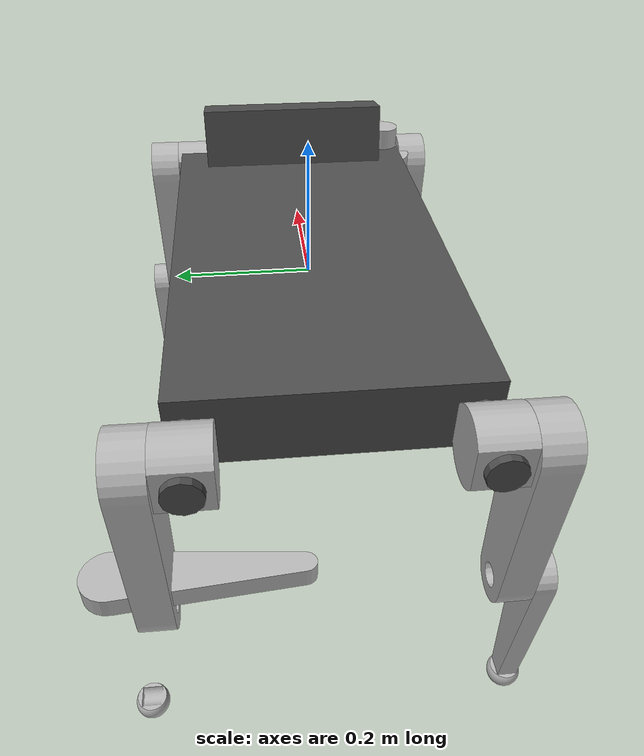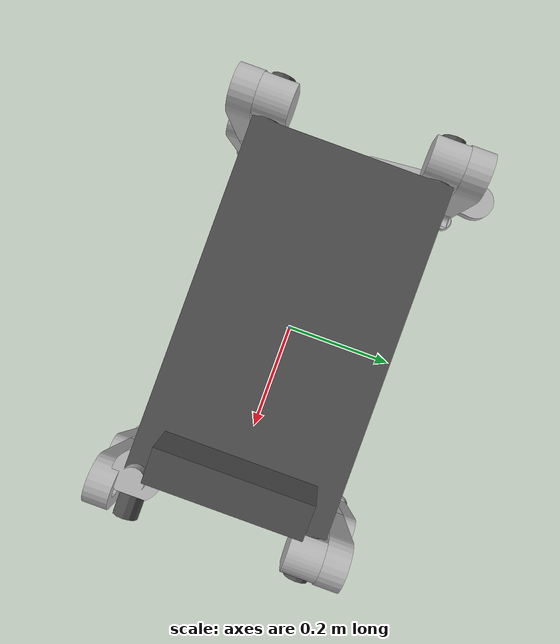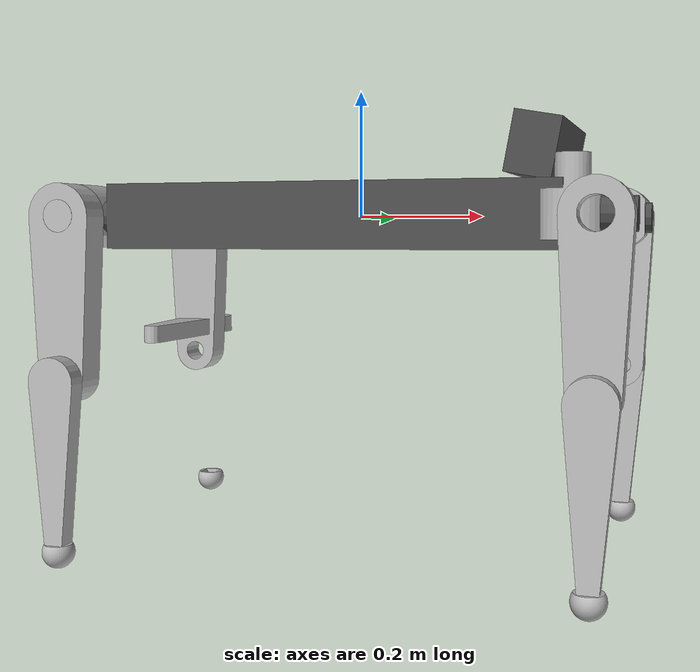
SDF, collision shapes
<sdf version='1.6'>
  <model name='simpledog'>
    <link name='base_link'>
      <pose frame=''>0 0 0 0 -0 0</pose>
      <inertial>
        <pose frame=''>0 -0 0 0 -0 0</pose>
        <mass>15.238</mass>
        <inertia>
          <ixx>0.74932</ixx>
          <ixy>-1.2062e-17</ixy>
          <ixz>-2.0602e-16</ixz>
          <iyy>2.3017</iyy>
          <iyz>-3.8366e-17</iyz>
          <izz>2.9675</izz>
        </inertia>
      </inertial>
      <collision name='base_link_collision'>
        <pose frame=''>0 0 0 0 -0 0</pose>
        <geometry>
          <mesh>
            <scale>1 1 1</scale>
            <uri>model://simpledog/meshes/base_link.STL</uri>
          </mesh>
        </geometry>
        <surface>
          <contact>
            <ode>
              <kp>1e+07</kp>
              <kd>1</kd>
            </ode>
          </contact>
          <friction>
            <ode>
              <mu>10</mu>
              <mu2>10</mu2>
              <fdir1>1 0 0</fdir1>
            </ode>
          </friction>
        </surface>
      </collision>
      <collision name='base_link_fixed_joint_lump__camera_link_collision_1'>
        <pose frame=''>0.3 0 0.1 0 0.18 0</pose>
        <geometry>
          <box>
            <size>0.07 0.3 0.09</size>
          </box>
        </geometry>
        <surface>
          <contact>
            <ode/>
          </contact>
          <friction>
            <ode/>
          </friction>
        </surface>
      </collision>
      <visual name='base_link_visual'>
        <pose frame=''>0 0 0 0 -0 0</pose>
        <geometry>
          <mesh>
            <scale>1 1 1</scale>
            <uri>model://simpledog/meshes/base_link.STL</uri>
          </mesh>
        </geometry>
        <material>
          <script>
            <name>Gazebo/DarkGrey</name>
            <uri>file://media/materials/scripts/gazebo.material</uri>
          </script>
        </material>
      </visual>
      <visual name='base_link_fixed_joint_lump__camera_link_visual_1'>
        <pose frame=''>0.3 0 0.1 0.18 -1e-06 1.5708</pose>
        <geometry>
          <mesh>
            <scale>1 1 1</scale>
            <uri>model://simpledog/meshes/kinect.dae</uri>
          </mesh>
        </geometry>
        <material>
          <script>
            <uri>__default__</uri>
            <name>__default__</name>
          </script>
        </material>
      </visual>
      <velocity_decay/>
      <gravity>1</gravity>
      <gravity>1</gravity>
      <velocity_decay/>
      <self_collide>0</self_collide>
      <sensor name='camera' type='depth'>
        <always_on>1</always_on>
        <update_rate>10</update_rate>
        <camera name='__default__'>
          <horizontal_fov>1.04667</horizontal_fov>
          <image>
            <format>R8G8B8</format>
            <width>640</width>
            <height>480</height>
          </image>
          <clip>
            <near>0.05</near>
            <far>8</far>
          </clip>
        </camera>
        <plugin name='kinect_camera_controller' filename='libgazebo_ros_openni_kinect.so'>
          <cameraName>camera</cameraName>
          <alwaysOn>true</alwaysOn>
          <updateRate>10.0</updateRate>
          <imageTopicName>rgb/image_raw</imageTopicName>
          <depthImageTopicName>depth/image_raw</depthImageTopicName>
          <pointCloudTopicName>depth/points</pointCloudTopicName>
          <cameraInfoTopicName>rgb/camera_info</cameraInfoTopicName>
          <depthImageCameraInfoTopicName>depth/camera_info</depthImageCameraInfoTopicName>
          <frameName>camera_frame_optical</frameName>
          <baseline>0.1</baseline>
          <distortion_k1>0.0</distortion_k1>
          <distortion_k2>0.0</distortion_k2>
          <distortion_k3>0.0</distortion_k3>
          <distortion_t1>0.0</distortion_t1>
          <distortion_t2>0.0</distortion_t2>
          <pointCloudCutoff>0.4</pointCloudCutoff>
          <robotNamespace>/simpledog</robotNamespace>
        </plugin>
        <pose frame=''>0.3 0 0.1 0 0.18 0</pose>
      </sensor>
    </link>
    <link name='front_left_1_Link'>
      <pose frame=''>0.4 0.175 0 1.5708 1.57052 1.5708</pose>
      <inertial>
        <pose frame=''>0 0.012793 -0.000236 0 -0 0</pose>
        <mass>1.1709</mass>
        <inertia>
          <ixx>0.001719</ixx>
          <ixy>2.9302e-20</ixy>
          <ixz>-1.6433e-19</ixz>
          <iyy>0.0013167</iyy>
          <iyz>-7.6795e-20</iyz>
          <izz>0.0021511</izz>
        </inertia>
      </inertial>
      <collision name='front_left_1_Link_collision'>
        <pose frame=''>0 0 0 0 -0 0</pose>
        <geometry>
          <mesh>
            <scale>1 1 1</scale>
            <uri>model://simpledog/meshes/front_left_1_Link.STL</uri>
          </mesh>
        </geometry>
        <surface>
          <contact>
            <ode>
              <kp>1e+07</kp>
              <kd>1</kd>
            </ode>
          </contact>
          <friction>
            <ode>
              <mu>100</mu>
              <mu2>100</mu2>
              <fdir1>1 0 0</fdir1>
            </ode>
          </friction>
        </surface>
      </collision>
      <visual name='front_left_1_Link_visual'>
        <pose frame=''>0 0 0 0 -0 0</pose>
        <geometry>
          <mesh>
            <scale>1 1 1</scale>
            <uri>model://simpledog/meshes/front_left_1_Link.STL</uri>
          </mesh>
        </geometry>
        <material>
          <script>
            <uri>__default__</uri>
            <name>__default__</name>
          </script>
        </material>
      </visual>
      <gravity>1</gravity>
      <velocity_decay/>
      <self_collide>0</self_collide>
    </link>
    <joint name='front_left_1_joint' type='revolute'>
      <child>front_left_1_Link</child>
      <parent>base_link</parent>
      <axis>
        <xyz>1 0 0</xyz>
        <limit>
          <lower>-3</lower>
          <upper>3</upper>
          <effort>300</effort>
          <velocity>10</velocity>
        </limit>
        <dynamics>
          <spring_reference>0</spring_reference>
          <spring_stiffness>0</spring_stiffness>
        </dynamics>
        <use_parent_model_frame>1</use_parent_model_frame>
      </axis>
      <physics>
        <provide_feedback>1</provide_feedback>
        <ode>
          <provide_feedback>1</provide_feedback>
          <limit>
            <cfm>0</cfm>
            <erp>0.2</erp>
          </limit>
        </ode>
      </physics>
    </joint>
    <link name='front_left_2_Link'>
      <pose frame=''>0.4 0.175 0 -4e-06 1.57052 1.5708</pose>
      <inertial>
        <pose frame=''>0.11439 0.000282 0.05942 0 -0 0</pose>
        <mass>1.3902</mass>
        <inertia>
          <ixx>0.0030209</ixx>
          <ixy>-5.6504e-20</ixy>
          <ixz>2.8413e-18</ixz>
          <iyy>0.026875</iyy>
          <iyz>1.5349e-06</iyz>
          <izz>0.028484</izz>
        </inertia>
      </inertial>
      <collision name='front_left_2_Link_collision'>
        <pose frame=''>0 0 0 0 -0 0</pose>
        <geometry>
          <mesh>
            <scale>1 1 1</scale>
            <uri>model://simpledog/meshes/front_left_2_Link.STL</uri>
          </mesh>
        </geometry>
        <surface>
          <contact>
            <ode>
              <kp>1e+07</kp>
              <kd>1</kd>
            </ode>
          </contact>
          <friction>
            <ode>
              <mu>100</mu>
              <mu2>100</mu2>
              <fdir1>1 0 0</fdir1>
            </ode>
          </friction>
        </surface>
      </collision>
      <visual name='front_left_2_Link_visual'>
        <pose frame=''>0 0 0 0 -0 0</pose>
        <geometry>
          <mesh>
            <scale>1 1 1</scale>
            <uri>model://simpledog/meshes/front_left_2_Link.STL</uri>
          </mesh>
        </geometry>
        <material>
          <script>
            <uri>__default__</uri>
            <name>__default__</name>
          </script>
        </material>
      </visual>
      <gravity>1</gravity>
      <velocity_decay/>
      <self_collide>0</self_collide>
    </link>
    <joint name='front_left_2_joint' type='revolute'>
      <child>front_left_2_Link</child>
      <parent>front_left_1_Link</parent>
      <axis>
        <xyz>-4e-06 1 0.00028</xyz>
        <limit>
          <lower>-3</lower>
          <upper>3</upper>
          <effort>300</effort>
          <velocity>10</velocity>
        </limit>
        <dynamics>
          <spring_reference>0</spring_reference>
          <spring_stiffness>0</spring_stiffness>
        </dynamics>
        <use_parent_model_frame>1</use_parent_model_frame>
      </axis>
      <physics>
        <provide_feedback>1</provide_feedback>
        <ode>
          <provide_feedback>1</provide_feedback>
          <limit>
            <cfm>0</cfm>
            <erp>0.2</erp>
          </limit>
        </ode>
      </physics>
    </joint>
    <link name='front_left_3_Link'>
      <pose frame=''>0.399665 0.28949 -0.250037 -4e-06 1.57052 1.5708</pose>
      <inertial>
        <pose frame=''>0.094936 1.5e-05 -0.016638 0 -0 0</pose>
        <mass>1.40792</mass>
        <inertia>
          <ixx>0.000547037</ixx>
          <ixy>-7.05879e-07</ixy>
          <ixz>-0.000224443</ixz>
          <iyy>0.0108863</iyy>
          <iyz>-8.23294e-08</iyz>
          <izz>0.0110815</izz>
        </inertia>
      </inertial>
      <collision name='front_left_3_Link_collision'>
        <pose frame=''>0 0 0 0 -0 0</pose>
        <geometry>
          <mesh>
            <scale>1 1 1</scale>
            <uri>model://simpledog/meshes/front_left_3_Link.STL</uri>
          </mesh>
        </geometry>
        <surface>
          <contact>
            <ode>
              <kp>1e+07</kp>
              <kd>1</kd>
            </ode>
          </contact>
          <friction>
            <ode>
              <mu>100</mu>
              <mu2>100</mu2>
              <fdir1>1 0 0</fdir1>
            </ode>
          </friction>
        </surface>
      </collision>
      <collision name='front_left_3_Link_fixed_joint_lump__lf_foot_Link_collision_1'>
        <pose frame=''>0.250004 0 -0.01494 0 -0 0</pose>
        <geometry>
          <mesh>
            <scale>1 1 1</scale>
            <uri>model://simpledog/meshes/lf_foot_Link.STL</uri>
          </mesh>
        </geometry>
        <surface>
          <contact>
            <ode>
              <kp>1e+07</kp>
              <kd>1</kd>
            </ode>
          </contact>
          <friction>
            <ode>
              <mu>100</mu>
              <mu2>100</mu2>
              <fdir1>1 0 0</fdir1>
            </ode>
          </friction>
        </surface>
      </collision>
      <visual name='front_left_3_Link_visual'>
        <pose frame=''>0 0 0 0 -0 0</pose>
        <geometry>
          <mesh>
            <scale>1 1 1</scale>
            <uri>model://simpledog/meshes/front_left_3_Link.STL</uri>
          </mesh>
        </geometry>
        <material>
          <script>
            <uri>__default__</uri>
            <name>__default__</name>
          </script>
        </material>
      </visual>
      <visual name='front_left_3_Link_fixed_joint_lump__lf_foot_Link_visual_1'>
        <pose frame=''>0.250004 0 -0.01494 0 -0 0</pose>
        <geometry>
          <mesh>
            <scale>1 1 1</scale>
            <uri>model://simpledog/meshes/lf_foot_Link.STL</uri>
          </mesh>
        </geometry>
        <material>
          <script>
            <name>Gazebo/DarkGrey</name>
            <uri>file://media/materials/scripts/gazebo.material</uri>
          </script>
        </material>
      </visual>
      <velocity_decay/>
      <velocity_decay/>
      <gravity>0</gravity>
      <velocity_decay/>
      <self_collide>0</self_collide>
      <sensor name='lf_foot_contact_sensor' type='contact'>
        <update_rate>100</update_rate>
        <contact>
          <collision>front_left_3_Link_fixed_joint_lump__lf_foot_Link_collision_1</collision>
          <topic>__default_topic__</topic>
        </contact>
        <plugin name='lf_foot_gazebo_ros_bumper_controller' filename='libgazebo_ros_bumper.so'>
          <alwaysOn>true</alwaysOn>
          <frameName>lf_foot_Link</frameName>
          <updateRate>100.0</updateRate>
          <bumperTopicName>lf_foot_bumper</bumperTopicName>
        </plugin>
        <pose frame=''>0.250004 0 -0.01494 0 -0 0</pose>
      </sensor>
    </link>
    <joint name='front_left_3_joint' type='revolute'>
      <child>front_left_3_Link</child>
      <parent>front_left_2_Link</parent>
      <axis>
        <xyz>-4e-06 1 0.00028</xyz>
        <limit>
          <lower>-3</lower>
          <upper>3</upper>
          <effort>300</effort>
          <velocity>10</velocity>
        </limit>
        <dynamics>
          <spring_reference>0</spring_reference>
          <spring_stiffness>0</spring_stiffness>
        </dynamics>
        <use_parent_model_frame>1</use_parent_model_frame>
      </axis>
      <physics>
        <provide_feedback>1</provide_feedback>
        <ode>
          <provide_feedback>1</provide_feedback>
          <limit>
            <cfm>0</cfm>
            <erp>0.2</erp>
          </limit>
        </ode>
      </physics>
    </joint>
    <link name='front_right_1_Link'>
      <pose frame=''>0.4 -0.175 0 -1.57079 1.57079 1.57079</pose>
      <inertial>
        <pose frame=''>0 0.012793 0 0 -0 0</pose>
        <mass>1.1709</mass>
        <inertia>
          <ixx>0.001719</ixx>
          <ixy>-5.88e-19</ixy>
          <ixz>-1.7779e-19</ixz>
          <iyy>0.0013167</iyy>
          <iyz>-2.0543e-19</iyz>
          <izz>0.0021511</izz>
        </inertia>
      </inertial>
      <collision name='front_right_1_Link_collision'>
        <pose frame=''>0 0 0 0 -0 0</pose>
        <geometry>
          <mesh>
            <scale>1 1 1</scale>
            <uri>model://simpledog/meshes/front_right_1_Link.STL</uri>
          </mesh>
        </geometry>
        <surface>
          <contact>
            <ode>
              <kp>1e+07</kp>
              <kd>1</kd>
            </ode>
          </contact>
          <friction>
            <ode>
              <mu>100</mu>
              <mu2>100</mu2>
              <fdir1>1 0 0</fdir1>
            </ode>
          </friction>
        </surface>
      </collision>
      <visual name='front_right_1_Link_visual'>
        <pose frame=''>0 0 0 0 -0 0</pose>
        <geometry>
          <mesh>
            <scale>1 1 1</scale>
            <uri>model://simpledog/meshes/front_right_1_Link.STL</uri>
          </mesh>
        </geometry>
        <material>
          <script>
            <uri>__default__</uri>
            <name>__default__</name>
          </script>
        </material>
      </visual>
      <gravity>1</gravity>
      <velocity_decay/>
      <self_collide>0</self_collide>
    </link>
    <joint name='front_right_1_joint' type='revolute'>
      <child>front_right_1_Link</child>
      <parent>base_link</parent>
      <axis>
        <xyz>-1 7e-06 0</xyz>
        <limit>
          <lower>-3</lower>
          <upper>3</upper>
          <effort>300</effort>
          <velocity>10</velocity>
        </limit>
        <dynamics>
          <spring_reference>0</spring_reference>
          <spring_stiffness>0</spring_stiffness>
        </dynamics>
        <use_parent_model_frame>1</use_parent_model_frame>
      </axis>
      <physics>
        <provide_feedback>1</provide_feedback>
        <ode>
          <provide_feedback>1</provide_feedback>
          <limit>
            <cfm>0</cfm>
            <erp>0.2</erp>
          </limit>
        </ode>
      </physics>
    </joint>
    <link name='front_right_2_Link'>
      <pose frame=''>0.4 -0.175 0 3.14159 1.57079 1.57079</pose>
      <inertial>
        <pose frame=''>0.11432 -0 0.05942 0 -0 0</pose>
        <mass>1.3902</mass>
        <inertia>
          <ixx>0.0030209</ixx>
          <ixy>-4.0905e-18</ixy>
          <ixz>-8.1586e-10</ixz>
          <iyy>0.026875</iyy>
          <iyz>2.3399e-19</iyz>
          <izz>0.028484</izz>
        </inertia>
      </inertial>
      <collision name='front_right_2_Link_collision'>
        <pose frame=''>0 0 0 0 -0 0</pose>
        <geometry>
          <mesh>
            <scale>1 1 1</scale>
            <uri>model://simpledog/meshes/front_right_2_Link.STL</uri>
          </mesh>
        </geometry>
        <surface>
          <contact>
            <ode>
              <kp>1e+07</kp>
              <kd>1</kd>
            </ode>
          </contact>
          <friction>
            <ode>
              <mu>100</mu>
              <mu2>100</mu2>
              <fdir1>1 0 0</fdir1>
            </ode>
          </friction>
        </surface>
      </collision>
      <visual name='front_right_2_Link_visual'>
        <pose frame=''>0 0 0 0 -0 0</pose>
        <geometry>
          <mesh>
            <scale>1 1 1</scale>
            <uri>model://simpledog/meshes/front_right_2_Link.STL</uri>
          </mesh>
        </geometry>
        <material>
          <script>
            <uri>__default__</uri>
            <name>__default__</name>
          </script>
        </material>
      </visual>
      <gravity>1</gravity>
      <velocity_decay/>
      <self_collide>0</self_collide>
    </link>
    <joint name='front_right_2_joint' type='revolute'>
      <child>front_right_2_Link</child>
      <parent>front_right_1_Link</parent>
      <axis>
        <xyz>-4e-06 -1 -4e-06</xyz>
        <limit>
          <lower>-3</lower>
          <upper>3</upper>
          <effort>300</effort>
          <velocity>10</velocity>
        </limit>
        <dynamics>
          <spring_reference>0</spring_reference>
          <spring_stiffness>0</spring_stiffness>
        </dynamics>
        <use_parent_model_frame>1</use_parent_model_frame>
      </axis>
      <physics>
        <provide_feedback>1</provide_feedback>
        <ode>
          <provide_feedback>1</provide_feedback>
          <limit>
            <cfm>0</cfm>
            <erp>0.2</erp>
          </limit>
        </ode>
      </physics>
    </joint>
    <link name='front_right_3_Link'>
      <pose frame=''>0.4 -0.289419 -0.25 3.14159 1.57079 1.57079</pose>
      <inertial>
        <pose frame=''>0.094932 6e-06 -0.016661 0 -0 0</pose>
        <mass>1.40792</mass>
        <inertia>
          <ixx>0.00054693</ixx>
          <ixy>-8.93449e-07</ixy>
          <ixz>-0.000221946</ixz>
          <iyy>0.0108863</iyy>
          <iyz>1.7109e-08</iyz>
          <izz>0.0110816</izz>
        </inertia>
      </inertial>
      <collision name='front_right_3_Link_collision'>
        <pose frame=''>0 0 0 0 -0 0</pose>
        <geometry>
          <mesh>
            <scale>1 1 1</scale>
            <uri>model://simpledog/meshes/front_right_3_Link.STL</uri>
          </mesh>
        </geometry>
        <surface>
          <contact>
            <ode>
              <kp>1e+07</kp>
              <kd>1</kd>
            </ode>
          </contact>
          <friction>
            <ode>
              <mu>100</mu>
              <mu2>100</mu2>
              <fdir1>1 0 0</fdir1>
            </ode>
          </friction>
        </surface>
      </collision>
      <collision name='front_right_3_Link_fixed_joint_lump__rf_foot_Link_collision_1'>
        <pose frame=''>0.25 0 -0.015 -0.000206 0 -0</pose>
        <geometry>
          <mesh>
            <scale>1 1 1</scale>
            <uri>model://simpledog/meshes/rf_foot_Link.STL</uri>
          </mesh>
        </geometry>
        <surface>
          <contact>
            <ode>
              <kp>1e+07</kp>
              <kd>1</kd>
            </ode>
          </contact>
          <friction>
            <ode>
              <mu>100</mu>
              <mu2>100</mu2>
              <fdir1>1 0 0</fdir1>
            </ode>
          </friction>
        </surface>
      </collision>
      <visual name='front_right_3_Link_visual'>
        <pose frame=''>0 0 0 0 -0 0</pose>
        <geometry>
          <mesh>
            <scale>1 1 1</scale>
            <uri>model://simpledog/meshes/front_right_3_Link.STL</uri>
          </mesh>
        </geometry>
        <material>
          <script>
            <uri>__default__</uri>
            <name>__default__</name>
          </script>
        </material>
      </visual>
      <visual name='front_right_3_Link_fixed_joint_lump__rf_foot_Link_visual_1'>
        <pose frame=''>0.25 0 -0.015 -0.000206 0 -0</pose>
        <geometry>
          <mesh>
            <scale>1 1 1</scale>
            <uri>model://simpledog/meshes/rf_foot_Link.STL</uri>
          </mesh>
        </geometry>
        <material>
          <script>
            <name>Gazebo/DarkGrey</name>
            <uri>file://media/materials/scripts/gazebo.material</uri>
          </script>
        </material>
      </visual>
      <velocity_decay/>
      <velocity_decay/>
      <gravity>0</gravity>
      <velocity_decay/>
      <self_collide>0</self_collide>
      <sensor name='rf_foot_contact_sensor' type='contact'>
        <update_rate>100</update_rate>
        <contact>
          <collision>front_right_3_Link_fixed_joint_lump__rf_foot_Link_collision_1</collision>
          <topic>__default_topic__</topic>
        </contact>
        <plugin name='rf_foot_gazebo_ros_bumper_controller' filename='libgazebo_ros_bumper.so'>
          <alwaysOn>true</alwaysOn>
          <frameName>rf_foot_Link</frameName>
          <updateRate>100.0</updateRate>
          <bumperTopicName>rf_foot_bumper</bumperTopicName>
        </plugin>
        <pose frame=''>0.25 0 -0.015 -0.000206 0 -0</pose>
      </sensor>
    </link>
    <joint name='front_right_3_joint' type='revolute'>
      <child>front_right_3_Link</child>
      <parent>front_right_2_Link</parent>
      <axis>
        <xyz>-4e-06 -1 -4e-06</xyz>
        <limit>
          <lower>-3</lower>
          <upper>3</upper>
          <effort>300</effort>
          <velocity>10</velocity>
        </limit>
        <dynamics>
          <spring_reference>0</spring_reference>
          <spring_stiffness>0</spring_stiffness>
        </dynamics>
        <use_parent_model_frame>1</use_parent_model_frame>
      </axis>
      <physics>
        <provide_feedback>1</provide_feedback>
        <ode>
          <provide_feedback>1</provide_feedback>
          <limit>
            <cfm>0</cfm>
            <erp>0.2</erp>
          </limit>
        </ode>
      </physics>
    </joint>
    <link name='rear_left_1_Link'>
      <pose frame=''>-0.4 0.175 0 1.5708 1.5652 1.5708</pose>
      <inertial>
        <pose frame=''>0 0.012793 0 0 -0 0</pose>
        <mass>1.1709</mass>
        <inertia>
          <ixx>0.001719</ixx>
          <ixy>-2.0371e-19</ixy>
          <ixz>5.3128e-21</ixz>
          <iyy>0.0013167</iyy>
          <iyz>-3.3901e-19</iyz>
          <izz>0.0021511</izz>
        </inertia>
      </inertial>
      <collision name='rear_left_1_Link_collision'>
        <pose frame=''>0 0 0 0 -0 0</pose>
        <geometry>
          <mesh>
            <scale>1 1 1</scale>
            <uri>model://simpledog/meshes/rear_left_1_Link.STL</uri>
          </mesh>
        </geometry>
        <surface>
          <contact>
            <ode>
              <kp>1e+07</kp>
              <kd>1</kd>
            </ode>
          </contact>
          <friction>
            <ode>
              <mu>100</mu>
              <mu2>100</mu2>
              <fdir1>1 0 0</fdir1>
            </ode>
          </friction>
        </surface>
      </collision>
      <visual name='rear_left_1_Link_visual'>
        <pose frame=''>0 0 0 0 -0 0</pose>
        <geometry>
          <mesh>
            <scale>1 1 1</scale>
            <uri>model://simpledog/meshes/rear_left_1_Link.STL</uri>
          </mesh>
        </geometry>
        <material>
          <script>
            <uri>__default__</uri>
            <name>__default__</name>
          </script>
        </material>
      </visual>
      <gravity>1</gravity>
      <velocity_decay/>
      <self_collide>0</self_collide>
    </link>
    <joint name='rear_left_1_joint' type='revolute'>
      <child>rear_left_1_Link</child>
      <parent>base_link</parent>
      <axis>
        <xyz>1 0 -0</xyz>
        <limit>
          <lower>-3</lower>
          <upper>3</upper>
          <effort>300</effort>
          <velocity>10</velocity>
        </limit>
        <dynamics>
          <spring_reference>0</spring_reference>
          <spring_stiffness>0</spring_stiffness>
        </dynamics>
        <use_parent_model_frame>1</use_parent_model_frame>
      </axis>
      <physics>
        <provide_feedback>1</provide_feedback>
        <ode>
          <provide_feedback>1</provide_feedback>
          <limit>
            <cfm>0</cfm>
            <erp>0.2</erp>
          </limit>
        </ode>
      </physics>
    </joint>
    <link name='rear_left_2_Link'>
      <pose frame=''>-0.4 0.175 0 -0 1.5652 1.5708</pose>
      <inertial>
        <pose frame=''>0.11432 0 0.05942 0 -0 0</pose>
        <mass>1.3902</mass>
        <inertia>
          <ixx>0.0030209</ixx>
          <ixy>-1.8526e-18</ixy>
          <ixz>2.5242e-19</ixz>
          <iyy>0.026875</iyy>
          <iyz>3.7608e-19</iyz>
          <izz>0.028484</izz>
        </inertia>
      </inertial>
      <collision name='rear_left_2_Link_collision'>
        <pose frame=''>0 0 0 0 -0 0</pose>
        <geometry>
          <mesh>
            <scale>1 1 1</scale>
            <uri>model://simpledog/meshes/rear_left_2_Link.STL</uri>
          </mesh>
        </geometry>
        <surface>
          <contact>
            <ode>
              <kp>1e+07</kp>
              <kd>1</kd>
            </ode>
          </contact>
          <friction>
            <ode>
              <mu>100</mu>
              <mu2>100</mu2>
              <fdir1>1 0 0</fdir1>
            </ode>
          </friction>
        </surface>
      </collision>
      <visual name='rear_left_2_Link_visual'>
        <pose frame=''>0 0 0 0 -0 0</pose>
        <geometry>
          <mesh>
            <scale>1 1 1</scale>
            <uri>model://simpledog/meshes/rear_left_2_Link.STL</uri>
          </mesh>
        </geometry>
        <material>
          <script>
            <uri>__default__</uri>
            <name>__default__</name>
          </script>
        </material>
      </visual>
      <gravity>1</gravity>
      <velocity_decay/>
      <self_collide>0</self_collide>
    </link>
    <joint name='rear_left_2_joint' type='revolute'>
      <child>rear_left_2_Link</child>
      <parent>rear_left_1_Link</parent>
      <axis>
        <xyz>-0 0.999984 0.005597</xyz>
        <limit>
          <lower>-3</lower>
          <upper>3</upper>
          <effort>300</effort>
          <velocity>10</velocity>
        </limit>
        <dynamics>
          <spring_reference>0</spring_reference>
          <spring_stiffness>0</spring_stiffness>
        </dynamics>
        <use_parent_model_frame>1</use_parent_model_frame>
      </axis>
      <physics>
        <provide_feedback>1</provide_feedback>
        <ode>
          <provide_feedback>1</provide_feedback>
          <limit>
            <cfm>0</cfm>
            <erp>0.2</erp>
          </limit>
        </ode>
      </physics>
    </joint>
    <link name='rear_left_3_Link'>
      <pose frame=''>-0.4 0.290817 -0.249356 -0 1.5652 1.5708</pose>
      <inertial>
        <pose frame=''>0.09483 7e-05 -0.016661 0 -0 0</pose>
        <mass>1.40792</mass>
        <inertia>
          <ixx>0.000546935</ixx>
          <ixy>-3.3893e-06</ixy>
          <ixz>-0.000221708</ixz>
          <iyy>0.0108371</iyy>
          <iyz>-6.04876e-07</iyz>
          <izz>0.0110324</izz>
        </inertia>
      </inertial>
      <collision name='rear_left_3_Link_collision'>
        <pose frame=''>0 0 0 0 -0 0</pose>
        <geometry>
          <mesh>
            <scale>1 1 1</scale>
            <uri>model://simpledog/meshes/rear_left_3_Link.STL</uri>
          </mesh>
        </geometry>
        <surface>
          <contact>
            <ode>
              <kp>1e+07</kp>
              <kd>1</kd>
            </ode>
          </contact>
          <friction>
            <ode>
              <mu>100</mu>
              <mu2>100</mu2>
              <fdir1>1 0 0</fdir1>
            </ode>
          </friction>
        </surface>
      </collision>
      <collision name='rear_left_3_Link_fixed_joint_lump__lh_foot_Link_collision_1'>
        <pose frame=''>0.247423 0.00038 -0.015 0 -0 0</pose>
        <geometry>
          <mesh>
            <scale>1 1 1</scale>
            <uri>model://simpledog/meshes/rh_foot_Link.STL</uri>
          </mesh>
        </geometry>
        <surface>
          <contact>
            <ode>
              <kp>1e+07</kp>
              <kd>1</kd>
            </ode>
          </contact>
          <friction>
            <ode>
              <mu>100</mu>
              <mu2>100</mu2>
              <fdir1>1 0 0</fdir1>
            </ode>
          </friction>
        </surface>
      </collision>
      <visual name='rear_left_3_Link_visual'>
        <pose frame=''>0 0 0 0 -0 0</pose>
        <geometry>
          <mesh>
            <scale>1 1 1</scale>
            <uri>model://simpledog/meshes/rear_left_3_Link.STL</uri>
          </mesh>
        </geometry>
        <material>
          <script>
            <uri>__default__</uri>
            <name>__default__</name>
          </script>
        </material>
      </visual>
      <visual name='rear_left_3_Link_fixed_joint_lump__lh_foot_Link_visual_1'>
        <pose frame=''>0.247423 0.00038 -0.015 0 -0 0</pose>
        <geometry>
          <mesh>
            <scale>1 1 1</scale>
            <uri>model://simpledog/meshes/rh_foot_Link.STL</uri>
          </mesh>
        </geometry>
        <material>
          <script>
            <name>Gazebo/DarkGrey</name>
            <uri>file://media/materials/scripts/gazebo.material</uri>
          </script>
        </material>
      </visual>
      <velocity_decay/>
      <velocity_decay/>
      <gravity>0</gravity>
      <velocity_decay/>
      <self_collide>0</self_collide>
      <sensor name='lh_foot_contact_sensor' type='contact'>
        <update_rate>100</update_rate>
        <contact>
          <collision>rear_right_3_Link_fixed_joint_lump__lh_foot_Link_collision_1</collision>
          <topic>__default_topic__</topic>
        </contact>
        <plugin name='lh_foot_gazebo_ros_bumper_controller' filename='libgazebo_ros_bumper.so'>
          <alwaysOn>true</alwaysOn>
          <frameName>lh_foot_Link</frameName>
          <updateRate>100.0</updateRate>
          <bumperTopicName>lh_foot_bumper</bumperTopicName>
        </plugin>
        <pose frame=''>0.247423 0.00038 -0.015 0 -0 0</pose>
      </sensor>
    </link>
    <joint name='rear_left_3_joint' type='revolute'>
      <child>rear_left_3_Link</child>
      <parent>rear_left_2_Link</parent>
      <axis>
        <xyz>-0 0.999984 0.005597</xyz>
        <limit>
          <lower>-3</lower>
          <upper>3</upper>
          <effort>300</effort>
          <velocity>10</velocity>
        </limit>
        <dynamics>
          <spring_reference>0</spring_reference>
          <spring_stiffness>0</spring_stiffness>
        </dynamics>
        <use_parent_model_frame>1</use_parent_model_frame>
      </axis>
      <physics>
        <provide_feedback>1</provide_feedback>
        <ode>
          <provide_feedback>1</provide_feedback>
          <limit>
            <cfm>0</cfm>
            <erp>0.2</erp>
          </limit>
        </ode>
      </physics>
    </joint>
    <link name='rear_right_1_Link'>
      <pose frame=''>-0.4 -0.175 0 -1.57079 1.57079 1.57079</pose>
      <inertial>
        <pose frame=''>-6e-06 0.012793 0.000302 0 -0 0</pose>
        <mass>1.1709</mass>
        <inertia>
          <ixx>0.001719</ixx>
          <ixy>1.9803e-07</ixy>
          <ixz>-1.4315e-19</ixz>
          <iyy>0.0013167</iyy>
          <iyz>-1.2614e-19</iyz>
          <izz>0.0021511</izz>
        </inertia>
      </inertial>
      <collision name='rear_right_1_Link_collision'>
        <pose frame=''>0 0 0 0 -0 0</pose>
        <geometry>
          <mesh>
            <scale>1 1 1</scale>
            <uri>model://simpledog/meshes/rear_right_1_Link.STL</uri>
          </mesh>
        </geometry>
        <surface>
          <contact>
            <ode>
              <kp>1e+07</kp>
              <kd>1</kd>
            </ode>
          </contact>
          <friction>
            <ode>
              <mu>100</mu>
              <mu2>100</mu2>
              <fdir1>1 0 0</fdir1>
            </ode>
          </friction>
        </surface>
      </collision>
      <visual name='rear_right_1_Link_visual'>
        <pose frame=''>0 0 0 0 -0 0</pose>
        <geometry>
          <mesh>
            <scale>1 1 1</scale>
            <uri>model://simpledog/meshes/rear_right_1_Link.STL</uri>
          </mesh>
        </geometry>
        <material>
          <script>
            <uri>__default__</uri>
            <name>__default__</name>
          </script>
        </material>
      </visual>
      <gravity>1</gravity>
      <velocity_decay/>
      <self_collide>0</self_collide>
    </link>
    <joint name='rear_right_1_joint' type='revolute'>
      <child>rear_right_1_Link</child>
      <parent>base_link</parent>
      <axis>
        <xyz>-1 7e-06 0</xyz>
        <limit>
          <lower>-3</lower>
          <upper>3</upper>
          <effort>300</effort>
          <velocity>10</velocity>
        </limit>
        <dynamics>
          <spring_reference>0</spring_reference>
          <spring_stiffness>0</spring_stiffness>
        </dynamics>
        <use_parent_model_frame>1</use_parent_model_frame>
      </axis>
      <physics>
        <provide_feedback>1</provide_feedback>
        <ode>
          <provide_feedback>1</provide_feedback>
          <limit>
            <cfm>0</cfm>
            <erp>0.2</erp>
          </limit>
        </ode>
      </physics>
    </joint>
    <link name='rear_right_2_Link'>
      <pose frame=''>-0.4 -0.175 0 3.14159 1.57079 1.57079</pose>
      <inertial>
        <pose frame=''>0.11443 -8.4e-05 0.05942 0 -0 0</pose>
        <mass>1.3902</mass>
        <inertia>
          <ixx>0.0030209</ixx>
          <ixy>-4.1489e-12</ixy>
          <ixz>-1.2337e-09</ixz>
          <iyy>0.026876</iyy>
          <iyz>5.4085e-06</iyz>
          <izz>0.028484</izz>
        </inertia>
      </inertial>
      <collision name='rear_right_2_Link_collision'>
        <pose frame=''>0 0 0 0 -0 0</pose>
        <geometry>
          <mesh>
            <scale>1 1 1</scale>
            <uri>model://simpledog/meshes/rear_right_2_Link.STL</uri>
          </mesh>
        </geometry>
        <surface>
          <contact>
            <ode>
              <kp>1e+07</kp>
              <kd>1</kd>
            </ode>
          </contact>
          <friction>
            <ode>
              <mu>100</mu>
              <mu2>100</mu2>
              <fdir1>1 0 0</fdir1>
            </ode>
          </friction>
        </surface>
      </collision>
      <visual name='rear_right_2_Link_visual'>
        <pose frame=''>0 0 0 0 -0 0</pose>
        <geometry>
          <mesh>
            <scale>1 1 1</scale>
            <uri>model://simpledog/meshes/rear_right_2_Link.STL</uri>
          </mesh>
        </geometry>
        <material>
          <script>
            <uri>__default__</uri>
            <name>__default__</name>
          </script>
        </material>
      </visual>
      <gravity>1</gravity>
      <velocity_decay/>
      <self_collide>0</self_collide>
    </link>
    <joint name='rear_right_2_joint' type='revolute'>
      <child>rear_right_2_Link</child>
      <parent>rear_right_1_Link</parent>
      <axis>
        <xyz>-4e-06 -1 -4e-06</xyz>
        <limit>
          <lower>-3</lower>
          <upper>3</upper>
          <effort>300</effort>
          <velocity>10</velocity>
        </limit>
        <dynamics>
          <spring_reference>0</spring_reference>
          <spring_stiffness>0</spring_stiffness>
        </dynamics>
        <use_parent_model_frame>1</use_parent_model_frame>
      </axis>
      <physics>
        <provide_feedback>1</provide_feedback>
        <ode>
          <provide_feedback>1</provide_feedback>
          <limit>
            <cfm>0</cfm>
            <erp>0.2</erp>
          </limit>
        </ode>
      </physics>
    </joint>
    <link name='rear_right_3_Link'>
      <pose frame=''>-0.3999 -0.289419 -0.250104 3.14159 1.57079 1.57079</pose>
      <inertial>
        <pose frame=''>0.094919 1.9e-05 -0.016661 0 -0 0</pose>
        <mass>1.40792</mass>
        <inertia>
          <ixx>0.000546935</ixx>
          <ixy>-4.11097e-06</ixy>
          <ixz>-0.000221917</ixz>
          <iyy>0.0108802</iyy>
          <iyz>-5.46996e-09</iyz>
          <izz>0.0110755</izz>
        </inertia>
      </inertial>
      <collision name='rear_right_3_Link_collision'>
        <pose frame=''>0 0 0 0 -0 0</pose>
        <geometry>
          <mesh>
            <scale>1 1 1</scale>
            <uri>model://simpledog/meshes/rear_right_3_Link.STL</uri>
          </mesh>
        </geometry>
        <surface>
          <contact>
            <ode>
              <kp>1e+07</kp>
              <kd>1</kd>
            </ode>
          </contact>
          <friction>
            <ode>
              <mu>100</mu>
              <mu2>100</mu2>
              <fdir1>1 0 0</fdir1>
            </ode>
          </friction>
        </surface>
      </collision>
      <collision name='rear_right_3_Link_fixed_joint_lump__rh_foot_Link_collision_1'>
        <pose frame=''>0.24968 0.000334 -0.015 0 -0 0</pose>
        <geometry>
          <mesh>
            <scale>1 1 1</scale>
            <uri>model://simpledog/meshes/lh_foot_Link.STL</uri>
          </mesh>
        </geometry>
        <surface>
          <contact>
            <ode>
              <kp>1e+07</kp>
              <kd>1</kd>
            </ode>
          </contact>
          <friction>
            <ode>
              <mu>100</mu>
              <mu2>100</mu2>
              <fdir1>1 0 0</fdir1>
            </ode>
          </friction>
        </surface>
      </collision>
      <visual name='rear_right_3_Link_visual'>
        <pose frame=''>0 0 0 0 -0 0</pose>
        <geometry>
          <mesh>
            <scale>1 1 1</scale>
            <uri>model://simpledog/meshes/rear_right_3_Link.STL</uri>
          </mesh>
        </geometry>
        <material>
          <script>
            <uri>__default__</uri>
            <name>__default__</name>
          </script>
        </material>
      </visual>
      <visual name='rear_right_3_Link_fixed_joint_lump__rh_foot_Link_visual_1'>
        <pose frame=''>0.24968 0.000334 -0.015 0 -0 0</pose>
        <geometry>
          <mesh>
            <scale>1 1 1</scale>
            <uri>model://simpledog/meshes/lh_foot_Link.STL</uri>
          </mesh>
        </geometry>
        <material>
          <script>
            <name>Gazebo/DarkGrey</name>
            <uri>file://media/materials/scripts/gazebo.material</uri>
          </script>
        </material>
      </visual>
      <velocity_decay/>
      <velocity_decay/>
      <gravity>0</gravity>
      <velocity_decay/>
      <self_collide>0</self_collide>
      <sensor name='rh_foot_contact_sensor' type='contact'>
        <update_rate>100</update_rate>
        <contact>
          <collision>rear_left_3_Link_fixed_joint_lump__rh_foot_Link_collision_1</collision>
          <topic>__default_topic__</topic>
        </contact>
        <plugin name='rh_foot_gazebo_ros_bumper_controller' filename='libgazebo_ros_bumper.so'>
          <alwaysOn>true</alwaysOn>
          <frameName>rh_foot_Link</frameName>
          <updateRate>100.0</updateRate>
          <bumperTopicName>rh_foot_bumper</bumperTopicName>
        </plugin>
        <pose frame=''>0.24968 0.000334 -0.015 0 -0 0</pose>
      </sensor>
    </link>
    <joint name='rear_right_3_joint' type='revolute'>
      <child>rear_right_3_Link</child>
      <parent>rear_right_2_Link</parent>
      <axis>
        <xyz>-4e-06 -1 -4e-06</xyz>
        <limit>
          <lower>-3</lower>
          <upper>3</upper>
          <effort>300</effort>
          <velocity>10</velocity>
        </limit>
        <dynamics>
          <spring_reference>0</spring_reference>
          <spring_stiffness>0</spring_stiffness>
        </dynamics>
        <use_parent_model_frame>1</use_parent_model_frame>
      </axis>
      <physics>
        <provide_feedback>1</provide_feedback>
        <ode>
          <provide_feedback>1</provide_feedback>
          <limit>
            <cfm>0</cfm>
            <erp>0.2</erp>
          </limit>
        </ode>
      </physics>
    </joint>
    <plugin name='balance_controller' filename='librobot_state_gazebo_ros_control_plugin.so'>
      <robotNamespace>/simpledog</robotNamespace>
      <robotSimType>balance_controller/SimRobotStateHardwareInterface</robotSimType>
    </plugin>
    <plugin name='ft_sensor' filename='libgazebo_ros_ft_sensor.so'>
      <updateRate>100.0</updateRate>
      <topicName>front_left_1_joint_ft_feedback</topicName>
      <jointName>front_left_1_joint</jointName>
    </plugin>
    <plugin name='ft_sensor' filename='libgazebo_ros_ft_sensor.so'>
      <updateRate>100.0</updateRate>
      <topicName>front_left_2_joint_ft_feedback</topicName>
      <jointName>front_left_2_joint</jointName>
    </plugin>
    <plugin name='ft_sensor' filename='libgazebo_ros_ft_sensor.so'>
      <updateRate>100.0</updateRate>
      <topicName>front_left_3_joint_ft_feedback</topicName>
      <jointName>front_left_3_joint</jointName>
    </plugin>
    <plugin name='ft_sensor' filename='libgazebo_ros_ft_sensor.so'>
      <updateRate>100.0</updateRate>
      <topicName>front_right_1_joint_ft_feedback</topicName>
      <jointName>front_right_1_joint</jointName>
    </plugin>
    <plugin name='ft_sensor' filename='libgazebo_ros_ft_sensor.so'>
      <updateRate>100.0</updateRate>
      <topicName>front_right_2_joint_ft_feedback</topicName>
      <jointName>front_right_2_joint</jointName>
    </plugin>
    <plugin name='ft_sensor' filename='libgazebo_ros_ft_sensor.so'>
      <updateRate>100.0</updateRate>
      <topicName>front_right_3_joint_ft_feedback</topicName>
      <jointName>front_right_3_joint</jointName>
    </plugin>
    <plugin name='ft_sensor' filename='libgazebo_ros_ft_sensor.so'>
      <updateRate>100.0</updateRate>
      <topicName>rear_right_1_joint_ft_feedback</topicName>
      <jointName>rear_right_1_joint</jointName>
    </plugin>
    <plugin name='ft_sensor' filename='libgazebo_ros_ft_sensor.so'>
      <updateRate>100.0</updateRate>
      <topicName>rear_right_2_joint_ft_feedback</topicName>
      <jointName>rear_right_2_joint</jointName>
    </plugin>
    <plugin name='ft_sensor' filename='libgazebo_ros_ft_sensor.so'>
      <updateRate>100.0</updateRate>
      <topicName>rear_right_3_joint_ft_feedback</topicName>
      <jointName>rear_right_3_joint</jointName>
    </plugin>
    <plugin name='ft_sensor' filename='libgazebo_ros_ft_sensor.so'>
      <updateRate>100.0</updateRate>
      <topicName>rear_left_1_joint_ft_feedback</topicName>
      <jointName>rear_left_1_joint</jointName>
    </plugin>
    <plugin name='ft_sensor' filename='libgazebo_ros_ft_sensor.so'>
      <updateRate>100.0</updateRate>
      <topicName>rear_left_2_joint_ft_feedback</topicName>
      <jointName>rear_left_2_joint</jointName>
    </plugin>
    <plugin name='ft_sensor' filename='libgazebo_ros_ft_sensor.so'>
      <updateRate>100.0</updateRate>
      <topicName>rear_left_3_joint_ft_feedback</topicName>
      <jointName>rear_left_3_joint</jointName>
    </plugin>
    <plugin name='f3d_lf_foot_controller' filename='libgazebo_ros_f3d.so'>
      <alwaysOn>true</alwaysOn>
      <updateRate>10.0</updateRate>
      <frameName>base_link</frameName>
      <topicName>lf_foot_force_ground_truth</topicName>
      <bodyName>front_left_3_Link</bodyName>
      <xyzOffset>-0.250004 0 0.0149398</xyzOffset>
      <rpyOffset>0 -0 0</rpyOffset>
    </plugin>
    <plugin name='f3d_rf_foot_controller' filename='libgazebo_ros_f3d.so'>
      <alwaysOn>true</alwaysOn>
      <updateRate>10.0</updateRate>
      <frameName>base_link</frameName>
      <topicName>rf_foot_force_ground_truth</topicName>
      <bodyName>front_right_3_Link</bodyName>
      <xyzOffset>-0.25 0 0.015</xyzOffset>
      <rpyOffset>0.000206014 -5.04099e-17 4.9959e-16</rpyOffset>
    </plugin>
    <plugin name='f3d_rh_foot_controller' filename='libgazebo_ros_f3d.so'>
      <alwaysOn>true</alwaysOn>
      <updateRate>10.0</updateRate>
      <frameName>base_link</frameName>
      <topicName>rh_foot_force_ground_truth</topicName>
      <bodyName>rear_right_3_Link</bodyName>
      <xyzOffset>-0.24968 -0.00033355 0.015</xyzOffset>
      <rpyOffset>0 -0 0</rpyOffset>
    </plugin>
    <static>0</static>
    <plugin name='f3d_lh_foot_controller' filename='libgazebo_ros_f3d.so'>
      <alwaysOn>true</alwaysOn>
      <updateRate>10.0</updateRate>
      <frameName>base_link</frameName>
      <topicName>lh_foot_force_ground_truth</topicName>
      <bodyName>rear_left_3_Link</bodyName>
      <xyzOffset>-0.247423 -0.000379575 0.015</xyzOffset>
      <rpyOffset>0 -0 0</rpyOffset>
    </plugin>
  </model>
</sdf>
